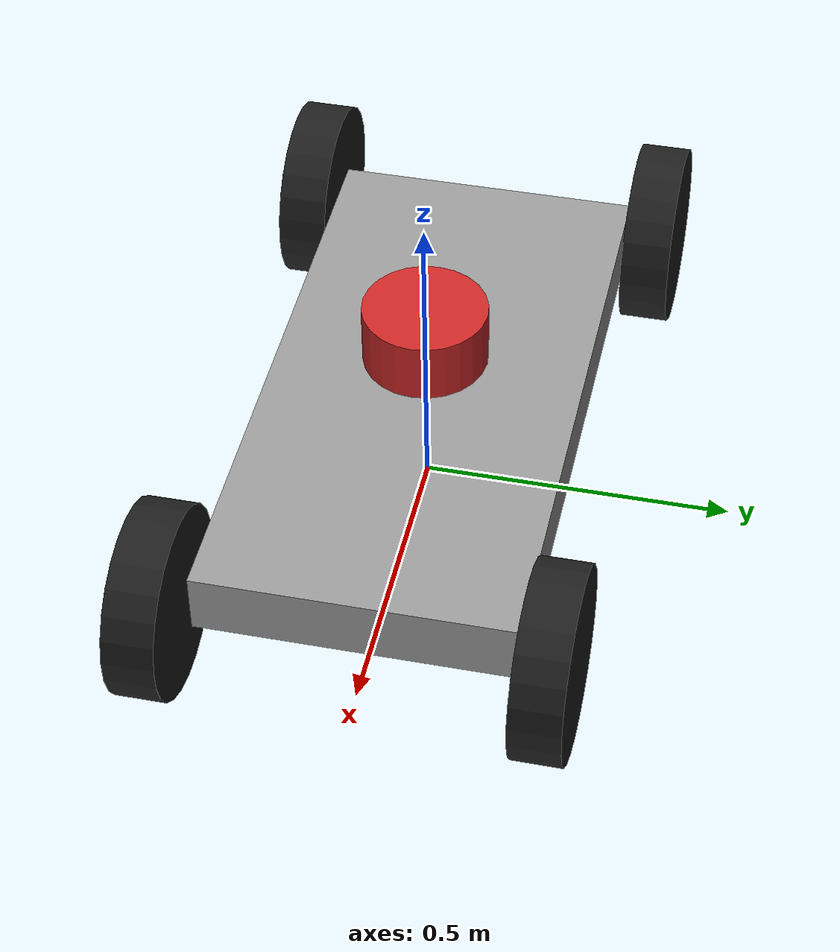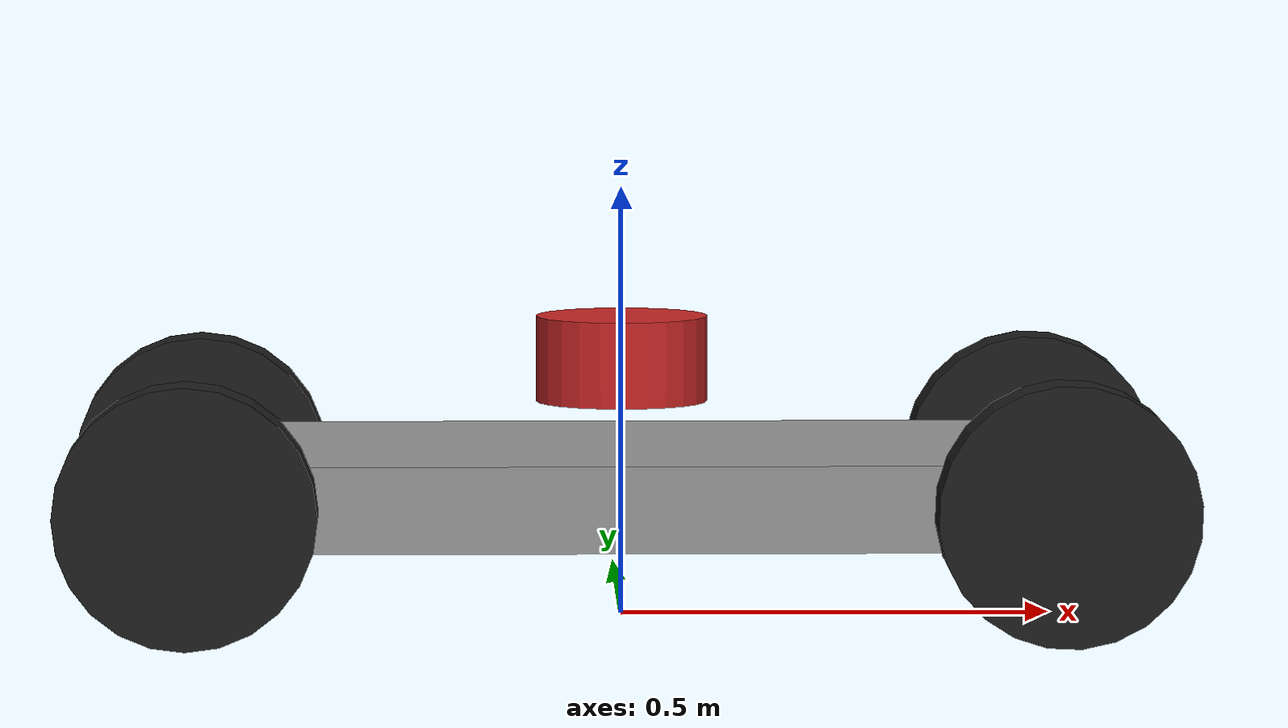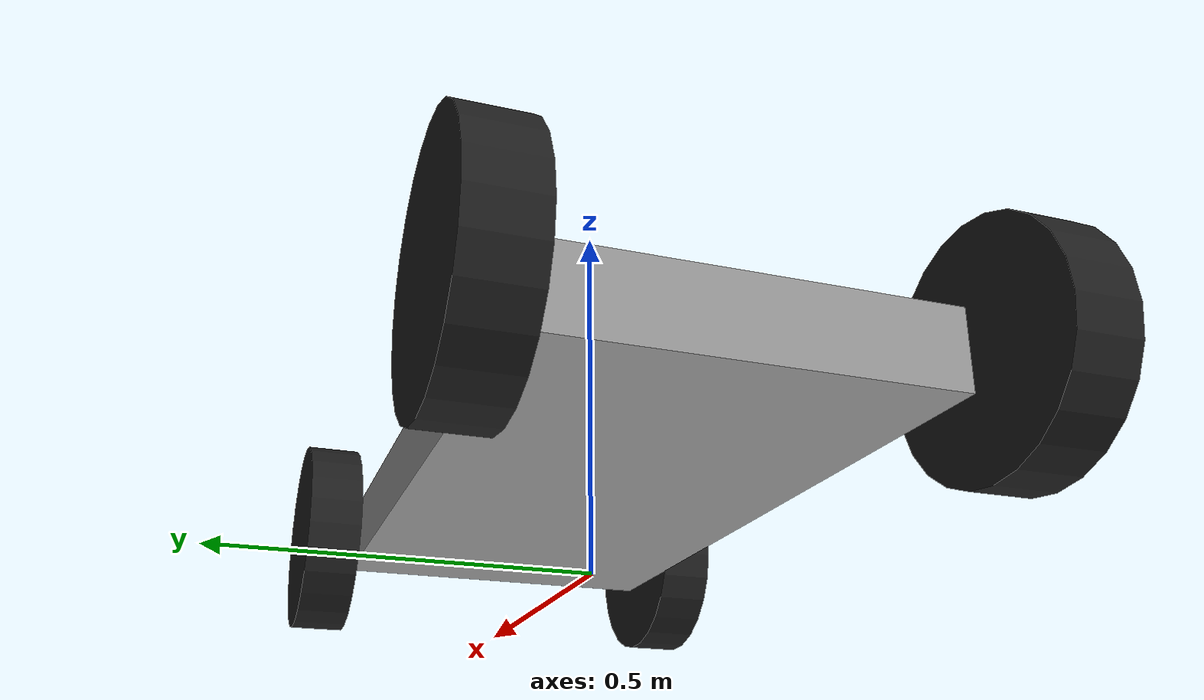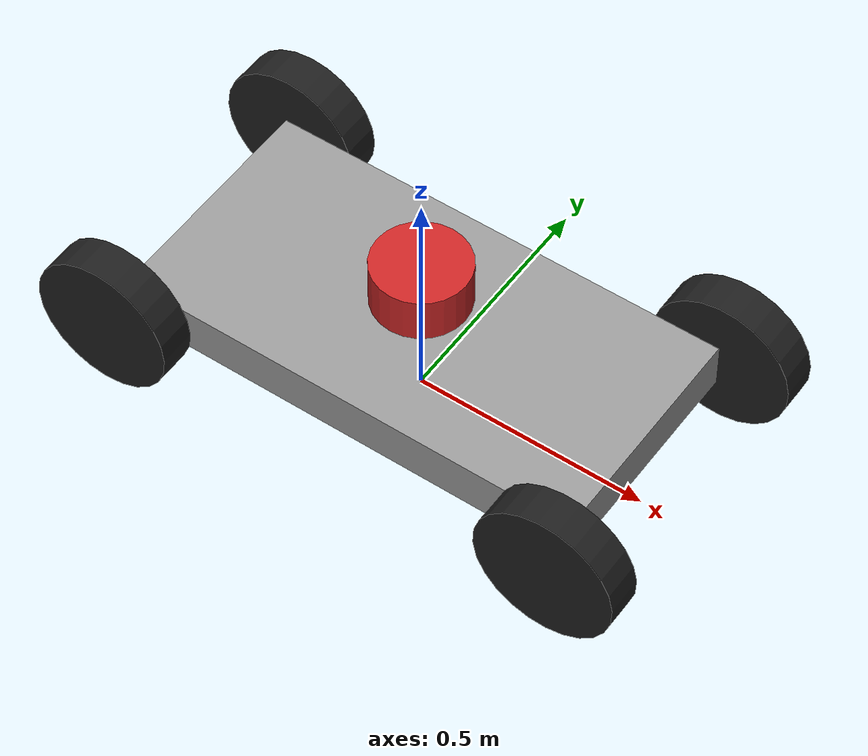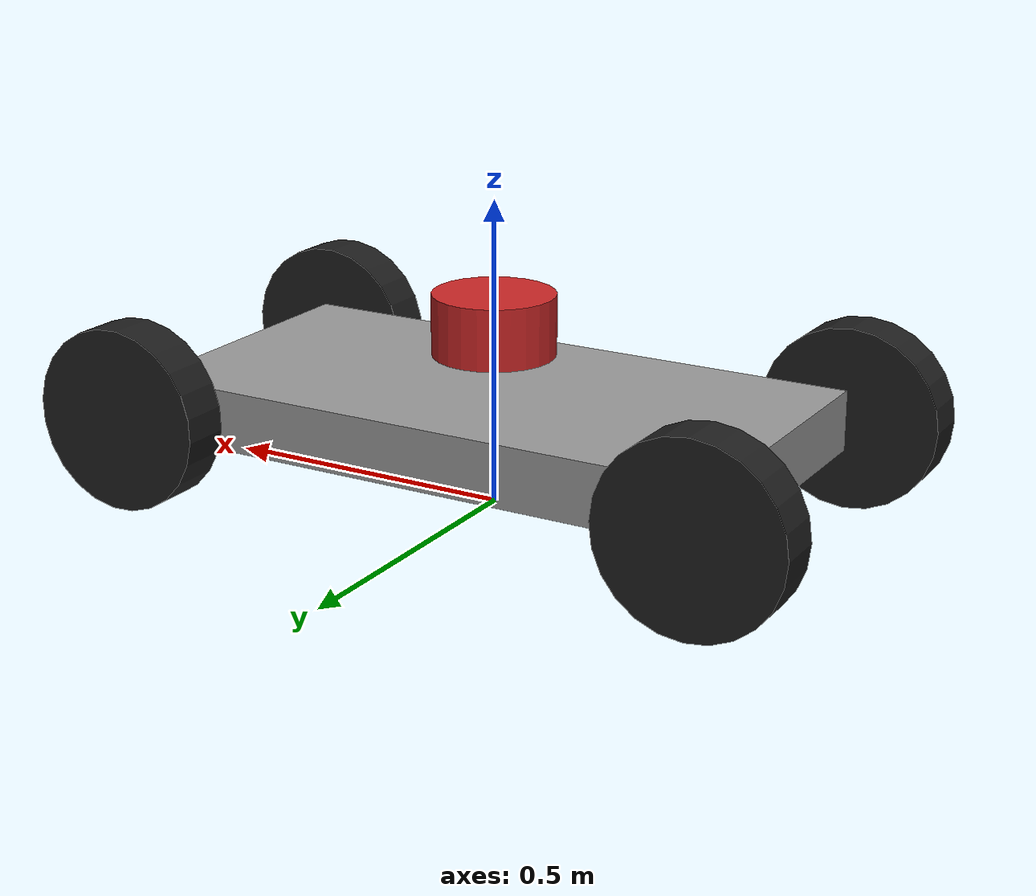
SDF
<?xml version="1.0" ?>

<sdf version="1.5">

  <model name="cart">
    <link name="chassis">
      <pose>0 0 0.15  0 0 0</pose>
      <inertial>
        <pose>0.1 0 0  0 0 0</pose>
        <mass>10</mass>
        <inertia>
          <ixx>0.21666666666666667</ixx>
          <iyy>0.8416666666666667</iyy>
          <izz>1.0416666666666667</izz>
          <ixy>0</ixy>
          <ixz>0</ixz>
          <iyz>0</iyz>
        </inertia>
      </inertial>
      <collision name="collision">
        <geometry>
          <box>
            <size>1.0 0.5 0.1</size>
          </box>
        </geometry>
      </collision>
      <visual name="visual">
        <geometry>
          <box>
            <size>1.0 0.5 0.1</size>
          </box>
        </geometry>
        <material>
          <script>
            <uri>file://media/materials/scripts/gazebo.material</uri>
            <name>Gazebo/Grey</name>
          </script>
        </material>
      </visual>
    </link>

    <link name="wheel_front_left">
      <pose>0.5 0.298 0.15  -1.5707963267948966 -0.08726646259971647 0</pose>
      <inertial>
        <mass>0.5</mass>
        <inertia>
          <ixx>0.0030791666666666667</ixx>
          <iyy>0.0030791666666666667</iyy>
          <izz>0.005625</izz>
          <ixy>0</ixy>
          <ixz>0</ixz>
          <iyz>0</iyz>
        </inertia>
      </inertial>
      <collision name="collision">
        <geometry>
          <cylinder>
            <radius>0.15</radius>
            <length>0.08</length>
          </cylinder>
        </geometry>
        <surface>
          <friction>
            <ode>
              <mu>0.9</mu>
              <mu2>0.9</mu2>
              <slip1>0.1</slip1>
              <slip2>0.1</slip2>
            </ode>
          </friction>
          <contact>
            <ode>
              <min_depth>0.005</min_depth>
              <kp>1e8</kp>
            </ode>
          </contact>
        </surface>
      </collision>
      <visual name="visual">
        <geometry>
          <cylinder>
            <radius>0.15</radius>
            <length>0.08</length>
          </cylinder>
        </geometry>
        <material>
          <script>
            <uri>file://media/materials/scripts/gazebo.material</uri>
            <name>Gazebo/Black</name>
          </script>
        </material>
      </visual>
    </link>

    <joint name="wheel_front_left_spin" type="revolute">
      <parent>chassis</parent>
      <child>wheel_front_left</child>
      <axis>
        <xyz>0 0 1</xyz>
      </axis>
    </joint>

    <link name="wheel_front_right">
      <pose>0.5 -0.298 0.15  -1.5707963267948966 -0.08726646259971647 0</pose>
      <inertial>
        <mass>0.5</mass>
        <inertia>
          <ixx>0.0030791666666666667</ixx>
          <iyy>0.0030791666666666667</iyy>
          <izz>0.005625</izz>
          <ixy>0</ixy>
          <ixz>0</ixz>
          <iyz>0</iyz>
        </inertia>
      </inertial>
      <collision name="collision">
        <geometry>
          <cylinder>
            <radius>0.15</radius>
            <length>0.08</length>
          </cylinder>
        </geometry>
        <surface>
          <friction>
            <ode>
              <mu>0.9</mu>
              <mu2>0.9</mu2>
              <slip1>0.1</slip1>
              <slip2>0.1</slip2>
            </ode>
          </friction>
          <contact>
            <ode>
              <min_depth>0.005</min_depth>
              <kp>1e8</kp>
            </ode>
          </contact>
        </surface>
      </collision>
      <visual name="visual">
        <geometry>
          <cylinder>
            <radius>0.15</radius>
            <length>0.08</length>
          </cylinder>
        </geometry>
        <material>
          <script>
            <uri>file://media/materials/scripts/gazebo.material</uri>
            <name>Gazebo/Black</name>
          </script>
        </material>
      </visual>
    </link>

    <joint name="wheel_front_right_spin" type="revolute">
      <parent>chassis</parent>
      <child>wheel_front_right</child>
      <axis>
        <xyz>0 0 1</xyz>
      </axis>
    </joint>

    <link name="wheel_rear_left">
      <pose>-0.5 0.298 0.15  -1.5707963267948966 0 0</pose>
      <inertial>
        <mass>0.5</mass>
        <inertia>
          <ixx>0.0030791666666666667</ixx>
          <iyy>0.0030791666666666667</iyy>
          <izz>0.005625</izz>
          <ixy>0</ixy>
          <ixz>0</ixz>
          <iyz>0</iyz>
        </inertia>
      </inertial>
      <collision name="collision">
        <geometry>
          <cylinder>
            <radius>0.15</radius>
            <length>0.08</length>
          </cylinder>
        </geometry>
        <surface>
          <friction>
            <ode>
              <mu>0.9</mu>
              <mu2>0.9</mu2>
              <slip1>0.1</slip1>
              <slip2>0.1</slip2>
            </ode>
          </friction>
          <contact>
            <ode>
              <min_depth>0.005</min_depth>
              <kp>1e8</kp>
            </ode>
          </contact>
        </surface>
      </collision>
      <visual name="visual">
        <geometry>
          <cylinder>
            <radius>0.15</radius>
            <length>0.08</length>
          </cylinder>
        </geometry>
        <material>
          <script>
            <uri>file://media/materials/scripts/gazebo.material</uri>
            <name>Gazebo/Black</name>
          </script>
        </material>
      </visual>
    </link>
    <joint name="wheel_rear_left_spin" type="revolute">
      <parent>chassis</parent>
      <child>wheel_rear_left</child>
      <axis>
        <xyz>0 0 1</xyz>
      </axis>
    </joint>

    <link name="wheel_rear_right">
      <pose>-0.5 -0.298 0.15  -1.5707963267948966 0 0</pose>
      <inertial>
        <mass>0.5</mass>
        <inertia>
          <ixx>0.0030791666666666667</ixx>
          <iyy>0.0030791666666666667</iyy>
          <izz>0.005625</izz>
          <ixy>0</ixy>
          <ixz>0</ixz>
          <iyz>0</iyz>
        </inertia>
      </inertial>
      <collision name="collision">
        <geometry>
          <cylinder>
            <radius>0.15</radius>
            <length>0.08</length>
          </cylinder>
        </geometry>
        <surface>
          <friction>
            <ode>
              <mu>0.9</mu>
              <mu2>0.9</mu2>
              <slip1>0.1</slip1>
              <slip2>0.1</slip2>
            </ode>
          </friction>
          <contact>
            <ode>
              <min_depth>0.005</min_depth>
              <kp>1e8</kp>
            </ode>
          </contact>
        </surface>
      </collision>
      <visual name="visual">
        <geometry>
          <cylinder>
            <radius>0.15</radius>
            <length>0.08</length>
          </cylinder>
        </geometry>
        <material>
          <script>
            <uri>file://media/materials/scripts/gazebo.material</uri>
            <name>Gazebo/Black</name>
          </script>
        </material>
      </visual>
    </link>
    <joint name="wheel_rear_right_spin" type="revolute">
      <parent>chassis</parent>
      <child>wheel_rear_right</child>
      <axis>
        <xyz>0 0 1</xyz>
      </axis>
    </joint>

    <!-- Laser -->
    <link name="laser_link">
      <pose>0 0 0.3 0 0 0</pose>
      <collision name="collision">
        <geometry>
          <cylinder>
            <radius>0.1</radius>
            <length>0.1</length>
          </cylinder>
        </geometry>
      </collision>

      <visual name="visual">
        <geometry>
          <cylinder>
            <radius>0.1</radius>
            <length>0.1</length>
          </cylinder>
        </geometry>
        <material>
          <script>
            <uri>file://media/materials/scripts/gazebo.material</uri>
            <name>Gazebo/Red</name>
          </script>
        </material>
      </visual>

      <inertial>
        <mass>1e-5</mass>
        <inertia>
          <ixx>1e-6</ixx>
          <iyy>1e-6</iyy>
          <izz>1e-6</izz>
          <ixy>0</ixy>
          <ixz>0</ixz>
          <iyz>0</iyz>
        </inertia>
      </inertial>

      <sensor name="laser" type="ray">
        <pose>0.000 0 0.000 0 0 0</pose>
        <ray>
          <scan>
            <horizontal>
              <samples>360</samples>
              <resolution>1.000000</resolution>
              <min_angle>-3.14</min_angle>
              <max_angle>3.14</max_angle>
            </horizontal>
          </scan>
          <range>
            <min>0.1</min>
            <max>100</max>
            <resolution>0.010000</resolution>
          </range>
        </ray>

        <plugin name='laser_controller' filename='libgazebo_ros_laser.so'>
          <gaussianNoise>0.005</gaussianNoise>
          <alwaysOn>1</alwaysOn>
          <updateRate>50</updateRate>
          <topicName>/scan</topicName>
          <frameName>laser_link</frameName>
        </plugin>
        <visualize>true</visualize>
        <update_rate>50</update_rate>
      </sensor>
    </link>

    <joint name="laser_joint" type="fixed">
      <parent>chassis</parent>
      <child>laser_link</child>
      <axis>
        <xyz>0 0 1</xyz>
      </axis>
    </joint>

    <plugin name="skid_steer_drive_controller" filename="libgazebo_ros_skid_steer_drive.so">
      <updateRate>70.0</updateRate>
      <robotNamespace>cart</robotNamespace>
      <leftFrontJoint>wheel_front_left_spin</leftFrontJoint>
      <rightFrontJoint>wheel_front_right_spin</rightFrontJoint>
      <leftRearJoint>wheel_rear_left_spin</leftRearJoint>
      <rightRearJoint>wheel_rear_right_spin</rightRearJoint>
      <wheelSeparation>0.6</wheelSeparation>
      <wheelDiameter>0.3</wheelDiameter>
      <robotBaseFrame>chassis</robotBaseFrame>
      <torque>10.0</torque>
      <commandTopic>cmd_vel</commandTopic>
      <odometryTopic>odom</odometryTopic>
      <odometryFrame>odom</odometryFrame>
      <broadcastTF>1</broadcastTF>
    </plugin>

    <plugin name="joint_state_publisher" filename="libgazebo_ros_joint_state_publisher.so">
      <robotNamespace>/cart</robotNamespace>
      <jointName>wheel_front_left_spin, wheel_front_right_spin, wheel_rear_left_spin, wheel_rear_right_spin, laser_joint</jointName>
      <updateRate>100.0</updateRate>
      <alwaysOn>true</alwaysOn>
    </plugin>

  </model>

</sdf>
